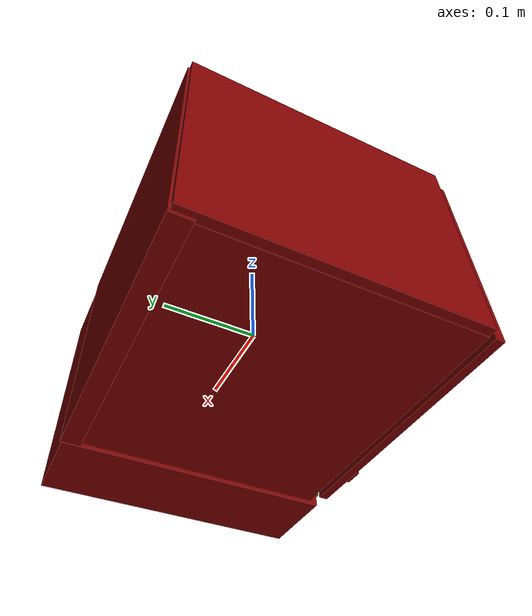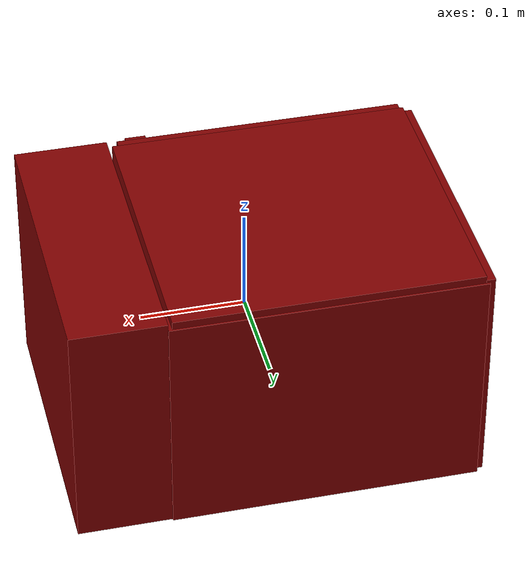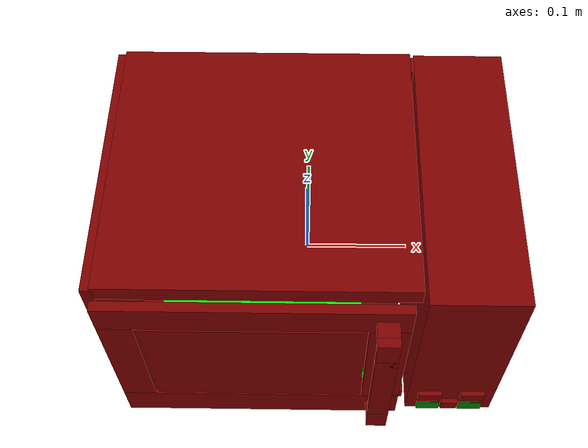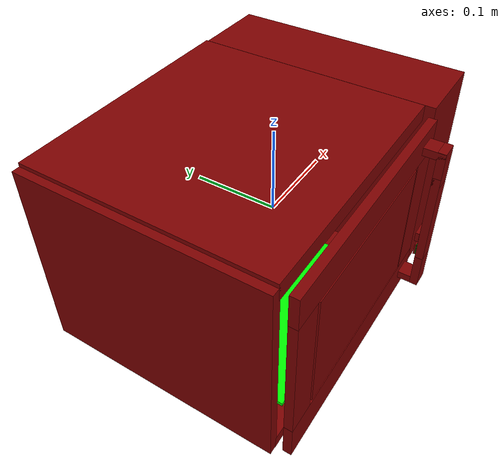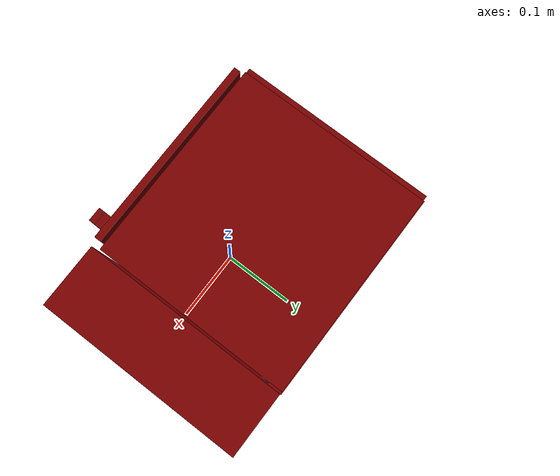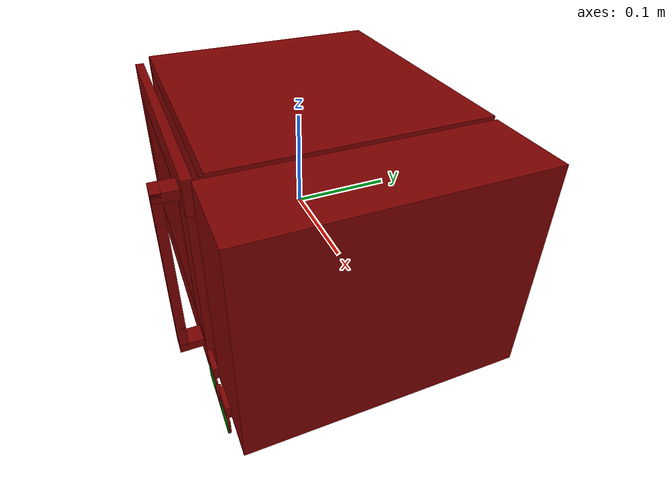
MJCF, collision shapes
<mujoco model="model">
  <compiler angle="radian"/>
  <asset>
    <mesh file="visuals/door.obj" name="door_vis"/>
    <mesh file="visuals/door_Clear.obj" name="door_Clear_vis"/>
    <mesh file="visuals/Body001.obj" name="Body001_vis"/>
    <mesh file="visuals/Button001.obj" name="Button001_vis"/>
    <mesh file="visuals/Button002.obj" name="Button002_vis"/>
    <mesh file="visuals/Button003.obj" name="Button003_vis"/>
    <mesh file="visuals/Button004.obj" name="Button004_vis"/>
    <mesh file="visuals/Button005.obj" name="Button005_vis"/>
    <mesh file="visuals/Disc001.obj" name="Disc001_vis"/>
    <texture file="visuals/T_BC001.png" name="Body001_material" type="2d"/>
    <material name="Body001_material" rgba="1 1 1 1.0" texture="Body001_material" shininess="0.2512328028678894" specular="0.3103448502657381"/>
    <texture file="visuals/T_BC001.png" name="door_material" type="2d"/>
    <material name="door_material" rgba="1 1 1 1.0" texture="door_material" shininess="0.2512328028678894" specular="0.3103448502657381"/>
    <texture file="visuals/T_BC001.png" name="door_Clear_material" type="2d"/>
    <material name="door_Clear_material" rgba="1 1 1 0.8999999761581421" texture="door_Clear_material" shininess="0.2512328028678894" specular="0.3103448502657381"/>
    <texture file="visuals/T_BC001.png" name="Button001_material" type="2d"/>
    <material name="Button001_material" rgba="1 1 1 1.0" texture="Button001_material" shininess="0.2512328028678894" specular="0.3103448502657381"/>
    <texture file="visuals/T_BC001.png" name="Button002_material" type="2d"/>
    <material name="Button002_material" rgba="1 1 1 1.0" texture="Button002_material" shininess="0.2512328028678894" specular="0.3103448502657381"/>
    <texture file="visuals/T_BC001.png" name="Button003_material" type="2d"/>
    <material name="Button003_material" rgba="1 1 1 1.0" texture="Button003_material" shininess="0.2512328028678894" specular="0.3103448502657381"/>
    <texture file="visuals/T_BC001.png" name="Button004_material" type="2d"/>
    <material name="Button004_material" rgba="1 1 1 1.0" texture="Button004_material" shininess="0.2512328028678894" specular="0.3103448502657381"/>
    <texture file="visuals/T_BC001.png" name="Button005_material" type="2d"/>
    <material name="Button005_material" rgba="1 1 1 1.0" texture="Button005_material" shininess="0.2512328028678894" specular="0.3103448502657381"/>
    <texture file="visuals/T_BC001.png" name="Disc001_material" type="2d"/>
    <material name="Disc001_material" rgba="1 1 1 1.0" texture="Disc001_material" shininess="0.2512328028678894" specular="0.3103448502657381"/>
  </asset>
  <default>
    <default class="visual">
      <geom conaffinity="0" contype="0" group="1" type="mesh"/>
    </default>
    <default class="collision">
      <geom group="0" rgba="0.5 0 0 0.5"/>
    </default>
    <default class="spawn">
      <geom group="0" rgba="1 1 1 0.5" contype="0" conaffinity="0"/>
      <site group="0" rgba="1 1 1 0.5"/>
    </default>
    <default class="region">
      <geom group="1" conaffinity="0" contype="0" rgba="0 1 0 0"/>
    </default>
  </default>
  <worldbody>
    <body>
      <body name="object">
        <geom class="collision" type="box" pos="0.1253557652235031 -0.1362496018409729 -0.08932928740978241" size="0.011541297659277916 0.00043169778655283153 0.007514444645494223" quat="1.0 0.0 0.0 0.0" name="start_button" rgba="0.0 0.5 0 0.5"/>
        <geom class="collision" type="box" pos="0.16811519861221313 -0.1362496018409729 -0.08932928740978241" size="0.011599956080317497 0.00043169778655283153 0.007514444645494223" quat="1.0 0.0 0.0 0.0" name="stop_button" rgba="0.0 0.5 0 0.5"/>
        <geom class="collision" type="box" pos="-0.048742424696683884 0.000439489318523556 -0.08594564348459244" size="0.10835521668195724 0.10835521668195724 0.0019601648673415184" quat="1.0 0.0 0.0 0.0" name="tray" rgba="0 1 0 0.5"/>
        <geom mesh="Body001_vis" type="mesh" solimp="0.998 0.998 0.001" solref="0.001 1" density="100" friction="0.95 0.3 0.1" class="visual" material="Body001_material"/>
        <geom class="collision" type="box" pos="-0.18790578842163086 0.019153578206896782 -0.0002707430103328079" size="0.005168746691197157 0.1362595111131668 0.11212367564439774" quat="1.0 0.0 0.0 0.0"/>
        <geom class="collision" type="box" pos="0.14874804019927979 0.01381467655301094 -0.0004730246146209538" size="0.04428158327937126 0.1415984183549881 0.11475517600774765" quat="1.0 0.0 0.0 0.0"/>
        <geom class="collision" type="box" pos="-0.04170643910765648 0.019153578206896782 0.1071585938334465" size="0.14267610013484955 0.1362595111131668 0.009090636856853962" quat="1.0 0.0 0.0 0.0"/>
        <geom class="collision" type="box" pos="-0.04170643910765648 0.019153578206896782 -0.10610416531562805" size="0.14267610013484955 0.1362595111131668 0.007334176916629076" quat="1.0 0.0 0.0 0.0"/>
        <geom class="collision" type="box" pos="-0.04156692326068878 0.14733971655368805 -0.003145991824567318" size="0.1460333913564682 0.010036175139248371 0.11208221316337585" quat="1.0 0.0 0.0 0.0"/>
        <body name="door">
          <joint axis="0.0 0.0 1.0" pos="-0.1859443038702011 -0.12729480862617493 0.0030818425584584475" limited="true" name="microjoint" range="-1.5707963267948966 0.0" type="hinge" damping="1" frictionloss="1" armature=".01" stiffness="0.05"/>
          <geom mesh="door_vis" type="mesh" solimp="0.998 0.998 0.001" solref="0.001 1" density="100" friction="0.95 0.3 0.1" class="visual" material="door_material"/>
          <geom class="collision" type="box" pos="-0.04521691054105759 -0.1295648068189621 0.0916292667388916" size="0.13870182633399963 0.004690682515501976 0.01730695366859436" quat="1.0 0.0 0.0 0.0"/>
          <geom class="collision" type="box" pos="-0.04521691054105759 -0.1295648068189621 -0.09118472784757614" size="0.13870182633399963 0.004690682515501976 0.020519744604825974" quat="1.0 0.0 0.0 0.0"/>
          <geom class="collision" type="box" pos="0.07502181082963943 -0.1295648068189621 0.0018286542035639286" size="0.018511760979890823 0.004690682515501976 0.07249365001916885" quat="1.0 0.0 0.0 0.0"/>
          <geom class="collision" type="box" pos="-0.16781088709831238 -0.1295648068189621 0.001828653970733285" size="0.016053976491093636 0.004690682515501976 0.07249365001916885" quat="1.0 0.0 0.0 0.0"/>
          <geom class="collision" type="box" pos="0.07142893224954605 -0.15367138385772705 0.07362314313650131" size="0.01000035647302866 0.004515059292316437 0.020818054676055908" quat="1.0 0.0 0.0 0.0"/>
          <geom class="collision" type="box" pos="0.07142893224954605 -0.15367138385772705 -0.07030646502971649" size="0.01000035647302866 0.004515059292316437 0.020818054676055908" quat="1.0 0.0 0.0 0.0"/>
          <geom class="collision" type="box" pos="0.07142893224954605 -0.14529253542423248 -0.0864449292421341" size="0.010000372305512428 0.012846069410443306 0.004515080712735653" quat="1.0 0.0 0.0 0.0"/>
          <geom class="collision" type="box" pos="0.07142893224954605 -0.14529253542423248 0.08965304493904114" size="0.010000372305512428 0.012846069410443306 0.004515080712735653" quat="1.0 0.0 0.0 0.0"/>
          <geom class="collision" type="box" pos="0.07142893224954605 -0.15367138385772705 0.0018286542035639286" size="0.010000355541706085 0.004515059292316437 0.061229363083839417" quat="1.0 0.0 0.0 0.0" name="door_handle"/>
          <body name="door_Clear">
            <geom mesh="door_Clear_vis" type="mesh" solimp="0.998 0.998 0.001" solref="0.001 1" density="100" friction="0.95 0.3 0.1" class="visual" material="door_Clear_material"/>
            <geom class="collision" type="box" pos="-0.04676046967506409 -0.1295648068189621 0.0018286526901647449" size="0.10106445848941803 0.004690785892307758 0.06950297206640244" quat="1.0 0.0 0.0 0.0"/>
          </body>
        </body>
        <body name="Button001">
          <joint axis="0.0 1.0 0.0" pos="0.16818472743034363 -0.13412690162658691 -0.0892641693353653" limited="true" name="Button001_joint" range="0.0 0.0015" type="slide" damping="1" frictionloss="1" armature=".01" stiffness="0.05"/>
          <geom mesh="Button001_vis" type="mesh" solimp="0.998 0.998 0.001" solref="0.001 1" density="100" friction="0.95 0.3 0.1" class="visual" material="Button001_material"/>
          <geom class="collision" type="box" pos="0.16811519861221313 -0.1346425861120224 -0.08932928740978241" size="0.011599956080317497 0.0009496696875430644 0.007514444645494223" quat="1.0 0.0 0.0 0.0"/>
        </body>
        <body name="Button002">
          <joint axis="0.0 1.0 0.0" pos="0.14683669805526733 -0.13412688672542572 -0.0894225463271141" limited="true" name="Button002_joint" range="0.0 0.0015" type="slide" damping="1" frictionloss="1" armature=".01" stiffness="0.05"/>
          <geom mesh="Button002_vis" type="mesh" solimp="0.998 0.998 0.001" solref="0.001 1" density="100" friction="0.95 0.3 0.1" class="visual" material="Button002_material"/>
          <geom class="collision" type="box" pos="0.14700725674629211 -0.13428159058094025 -0.08927401900291443" size="0.00829039141535759 0.00235665962100029 0.007166488561779261" quat="1.0 0.0 0.0 0.0"/>
        </body>
        <body name="Button003">
          <joint axis="0.0 1.0 0.0" pos="0.12531735002994537 -0.13412688672542572 -0.06930043548345566" limited="true" name="Button003_joint" range="0.0 0.0015" type="slide" damping="1" frictionloss="1" armature=".01" stiffness="0.05"/>
          <geom mesh="Button003_vis" type="mesh" solimp="0.998 0.998 0.001" solref="0.001 1" density="100" friction="0.95 0.3 0.1" class="visual" material="Button003_material"/>
          <geom class="collision" type="box" pos="0.12536214292049408 -0.13421250879764557 -0.06933782994747162" size="0.01164510939270258 0.00235665962100029 0.006281157489866018" quat="1.0 0.0 0.0 0.0"/>
        </body>
        <body name="Button004">
          <joint axis="0.0 1.0 0.0" pos="0.16818472743034363 -0.13412688672542572 -0.06956304609775543" limited="true" name="Button004_joint" range="0.0 0.0015" type="slide" damping="1" frictionloss="1" armature=".01" stiffness="0.05"/>
          <geom mesh="Button004_vis" type="mesh" solimp="0.998 0.998 0.001" solref="0.001 1" density="100" friction="0.95 0.3 0.1" class="visual" material="Button004_material"/>
          <geom class="collision" type="box" pos="0.16827204823493958 -0.13421250879764557 -0.06933782994747162" size="0.011550639756023884 0.00235665962100029 0.006281157489866018" quat="1.0 0.0 0.0 0.0"/>
        </body>
        <body name="Button005">
          <joint axis="0.0 1.0 0.0" pos="0.12531735002994537 -0.13412687182426453 -0.0892641618847847" limited="true" name="Button005_joint" range="0.0 0.0015" type="slide" damping="1" frictionloss="1" armature=".01" stiffness="0.05"/>
          <geom mesh="Button005_vis" type="mesh" solimp="0.998 0.998 0.001" solref="0.001 1" density="100" friction="0.95 0.3 0.1" class="visual" material="Button005_material"/>
          <geom class="collision" type="box" pos="0.1253557652235031 -0.1346425861120224 -0.08932928740978241" size="0.011541297659277916 0.0009496696875430644 0.007514444645494223" quat="1.0 0.0 0.0 0.0"/>
        </body>
        <body name="Disc001">
          <joint axis="0.0 0.0 1.0" pos="-0.048637643456459045 0.0005263680941425264 -0.08937321603298187" limited="false" name="Disc001_joint" range="0 360" type="hinge" damping="1" frictionloss="1" armature=".01" stiffness="0.05"/>
          <geom mesh="Disc001_vis" type="mesh" solimp="0.998 0.998 0.001" solref="0.001 1" density="100" friction="0.95 0.3 0.1" class="visual" material="Disc001_material"/>
          <geom class="collision" type="cylinder" pos="-0.04871651902794838 1.6411354497591901e-09 -0.09219613671302795" size="0.11013475060462952 0.002934954594820738" quat="1.0 0.0 0.0 0.0"/>
        </body>
        <geom class="region" name="reg_main" type="box" pos="0.0 0.012013062834739685 0.0" size="0.19308269023895264 0.1462685614824295 0.11573612689971924"/>
        <geom class="region" name="reg_int" type="box" pos="-0.042838215827941895 0.008814193308353424 -0.0007124766707420349" size="0.1357220709323883 0.12221895903348923 0.09387034922838211"/>
      </body>
    </body>
  </worldbody>
  <actuator>
    <motor name="microjoint_actuator" joint="microjoint" gear="10"/>
    <motor name="Button001_joint_actuator" joint="Button001_joint" gear="0.5"/>
    <motor name="Button002_joint_actuator" joint="Button002_joint" gear="0.5"/>
    <motor name="Button003_joint_actuator" joint="Button003_joint" gear="0.5"/>
    <motor name="Button004_joint_actuator" joint="Button004_joint" gear="0.5"/>
    <motor name="Button005_joint_actuator" joint="Button005_joint" gear="0.5"/>
    <motor name="Disc001_joint_actuator" joint="Disc001_joint" gear="0.5"/>
  </actuator>
</mujoco>
